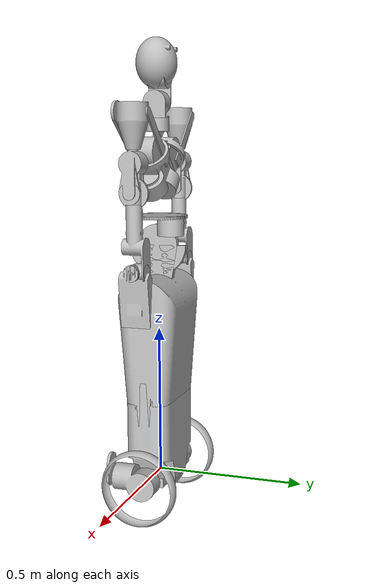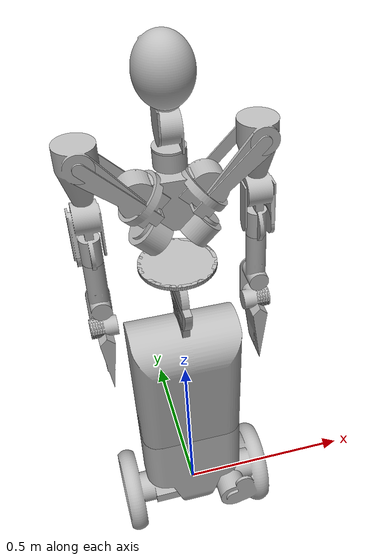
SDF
<?xml version="1.0" ?>
<sdf version="1.6">
	<model name="pre-robody">
		<link name="Torso">
			<self_collide>false</self_collide>
			<pose frame="">-2.2573269931661763e-13 -7.373558974626041e-18 1.0610561705602035 0.0 -0.0 0.0</pose>
			<inertial>
				<pose frame="">0.0 0.0 0.0 0 0 0</pose>
				<mass>8.970094968407071</mass>
				<inertia>
					<ixx>10.129081272648332</ixx>
					<ixy>-3.9277892939082764e-19</ixy>
					<ixz>2.4057895143143707e-12</ixz>
					<iyy>10.138941947590036</iyy>
					<iyz>5.0844922514974945e-17</iyz>
					<izz>0.015187827236129511</izz>
				</inertia>
			</inertial>
			<collision name="Torso_collision">
				<geometry>
					<mesh>
						<uri>model://pre-robody/meshes/CAD/Torso.stl</uri>
						<scale>0.001 0.001 0.001</scale>
					</mesh>
				</geometry>
			</collision>
			<visual name="Torso_visual">
				<geometry>
					<mesh>
						<uri>model://pre-robody/meshes/CAD/Torso.stl</uri>
						<scale>0.001 0.001 0.001</scale>
					</mesh>
				</geometry>
			</visual>
		</link>
		<link name="Shoulder_1_Right">
			<self_collide>false</self_collide>
			<pose frame="">0.08200408206168382 -3.783883224433904e-06 1.0990040820565599 0.0 -0.0 0.0</pose>
			<inertial>
				<pose frame="">0.0 0.0 0.0 0 0 0</pose>
				<mass>0.9004482327815297</mass>
				<inertia>
					<ixx>1.0883647363354698</ixx>
					<ixy>5.324674680686329e-07</ixy>
					<ixz>-0.08115161098796815</ixz>
					<iyy>1.0947081518019737</iyy>
					<iyz>3.997580677009343e-06</iyz>
					<izz>0.006849598056846516</izz>
				</inertia>
			</inertial>
			<collision name="Shoulder_1_Right_collision">
				<geometry>
					<mesh>
						<uri>model://pre-robody/meshes/CAD/Shoulder_1_Right.stl</uri>
						<scale>0.001 0.001 0.001</scale>
					</mesh>
				</geometry>
			</collision>
			<visual name="Shoulder_1_Right_visual">
				<geometry>
					<mesh>
						<uri>model://pre-robody/meshes/CAD/Shoulder_1_Right.stl</uri>
						<scale>0.001 0.001 0.001</scale>
					</mesh>
				</geometry>
			</visual>
		</link>
		<link name="Shoulder_2_Right">
			<self_collide>false</self_collide>
			<pose frame="">0.2049999999948746 -2.470048853215355e-06 1.2219859414214114 0.0 -0.0 0.0</pose>
			<inertial>
				<pose frame="">0.0 0.0 0.0 0 0 0</pose>
				<mass>0.9002392747332185</mass>
				<inertia>
					<ixx>1.3450757052257027</ixx>
					<ixy>4.5584517258437846e-07</ixy>
					<ixz>-0.22551634621043887</ixz>
					<iyy>1.382908154367689</iyy>
					<iyz>2.717281955554151e-06</iyz>
					<izz>0.03891336638943579</izz>
				</inertia>
			</inertial>
			<collision name="Shoulder_2_Right_collision">
				<geometry>
					<mesh>
						<uri>model://pre-robody/meshes/CAD/Shoulder_2_Right.stl</uri>
						<scale>0.001 0.001 0.001</scale>
					</mesh>
				</geometry>
			</collision>
			<visual name="Shoulder_2_Right_visual">
				<geometry>
					<mesh>
						<uri>model://pre-robody/meshes/CAD/Shoulder_2_Right.stl</uri>
						<scale>0.001 0.001 0.001</scale>
					</mesh>
				</geometry>
			</visual>
		</link>
		<link name="ElbowSegment_Right">
			<self_collide>false</self_collide>
			<pose frame="">0.20500450157987132 2.717612187223314e-12 0.9724009508312618 0.0 -0.0 0.0</pose>
			<inertial>
				<pose frame="">0.0 0.0 0.0 0 0 0</pose>
				<mass>0.3000738273336225</mass>
				<inertia>
					<ixx>0.2839146411405186</ixx>
					<ixy>-1.6717014372883148e-13</ixy>
					<ixz>-0.059818688902899146</ixz>
					<iyy>0.2965257867468056</iyy>
					<iyz>-7.938319008747499e-13</iyz>
					<izz>0.012712653951093063</izz>
				</inertia>
			</inertial>
			<collision name="ElbowSegment_Right_collision">
				<geometry>
					<mesh>
						<uri>model://pre-robody/meshes/CAD/ElbowSegment_Right.stl</uri>
						<scale>0.001 0.001 0.001</scale>
					</mesh>
				</geometry>
			</collision>
			<visual name="ElbowSegment_Right_visual">
				<geometry>
					<mesh>
						<uri>model://pre-robody/meshes/CAD/ElbowSegment_Right.stl</uri>
						<scale>0.001 0.001 0.001</scale>
					</mesh>
				</geometry>
			</visual>
		</link>
		<link name="Wrist_Right">
			<self_collide>false</self_collide>
			<pose frame="">0.205000000000019 6.913127882814822e-06 0.7228000000054356 0.0 -0.0 0.0</pose>
			<inertial>
				<pose frame="">0.0 0.0 0.0 0 0 0</pose>
				<mass>0.30009606885046797</mass>
				<inertia>
					<ixx>0.15688361309042698</ixx>
					<ixy>-4.2529351271320555e-07</ixy>
					<ixz>-0.044466434906187735</ixz>
					<iyy>0.16956937252836696</iyy>
					<iyz>-1.4995226877910244e-06</iyz>
					<izz>0.01278726877271213</izz>
				</inertia>
			</inertial>
			<collision name="Wrist_Right_collision">
				<geometry>
					<mesh>
						<uri>model://pre-robody/meshes/CAD/Wrist_Right.stl</uri>
						<scale>0.001 0.001 0.001</scale>
					</mesh>
				</geometry>
			</collision>
			<visual name="Wrist_Right_visual">
				<geometry>
					<mesh>
						<uri>model://pre-robody/meshes/CAD/Wrist_Right.stl</uri>
						<scale>0.001 0.001 0.001</scale>
					</mesh>
				</geometry>
			</visual>
		</link>
		<link name="EndEffector_Right">
			<self_collide>false</self_collide>
			<pose frame="">0.20500149347460866 0.0 0.6328171587774016 0.0 -0.0 0.0</pose>
			<inertial>
				<pose frame="">0.0 0.0 0.0 0 0 0</pose>
				<mass>1.0005084735894825</mass>
				<inertia>
					<ixx>0.40170482223213305</ixx>
					<ixy>-2.752130152580535e-20</ixy>
					<ixz>-0.12979456227373998</ixz>
					<iyy>0.44357649539364324</iyy>
					<iyz>1.707033291190246e-21</iyz>
					<izz>0.04228908651285314</izz>
				</inertia>
			</inertial>
			<collision name="EndEffector_Right_collision">
				<geometry>
					<mesh>
						<uri>model://pre-robody/meshes/CAD/EndEffector_Right.stl</uri>
						<scale>0.001 0.001 0.001</scale>
					</mesh>
				</geometry>
			</collision>
			<visual name="EndEffector_Right_visual">
				<geometry>
					<mesh>
						<uri>model://pre-robody/meshes/CAD/EndEffector_Right.stl</uri>
						<scale>0.001 0.001 0.001</scale>
					</mesh>
				</geometry>
			</visual>
		</link>
		<link name="UpperArm_Right">
			<self_collide>false</self_collide>
			<pose frame="">0.2050012998505205 9.111600451728522e-18 1.0541578896430777 0.0 -0.0 0.0</pose>
			<inertial>
				<pose frame="">0.0 0.0 0.0 0 0 0</pose>
				<mass>1.100185489481107</mass>
				<inertia>
					<ixx>1.2233577434051586</ixx>
					<ixy>-2.533797290843379e-19</ixy>
					<ixz>-0.23775416672999847</ixz>
					<iyy>1.2694696278826019</iyy>
					<iyz>-3.4316810476747225e-19</iyz>
					<izz>0.046753465634248176</izz>
				</inertia>
			</inertial>
			<collision name="UpperArm_Right_collision">
				<geometry>
					<mesh>
						<uri>model://pre-robody/meshes/CAD/UpperArm_Right.stl</uri>
						<scale>0.001 0.001 0.001</scale>
					</mesh>
				</geometry>
			</collision>
			<visual name="UpperArm_Right_visual">
				<geometry>
					<mesh>
						<uri>model://pre-robody/meshes/CAD/UpperArm_Right.stl</uri>
						<scale>0.001 0.001 0.001</scale>
					</mesh>
				</geometry>
			</visual>
		</link>
		<link name="LowerArm_Right">
			<self_collide>false</self_collide>
			<pose frame="">0.20500000000206026 3.3213008140799964e-06 0.8140447593373845 0.0 -0.0 0.0</pose>
			<inertial>
				<pose frame="">0.0 0.0 0.0 0 0 0</pose>
				<mass>0.4003705013642328</mass>
				<inertia>
					<ixx>0.2656626968642574</ixx>
					<ixy>-2.725989287861553e-07</ixy>
					<ixz>-0.06681349922857352</ixz>
					<iyy>0.2823964679388355</iyy>
					<iyz>-1.0336258071510531e-06</iyz>
					<izz>0.01702557305708129</izz>
				</inertia>
			</inertial>
			<collision name="LowerArm_Right_collision">
				<geometry>
					<mesh>
						<uri>model://pre-robody/meshes/CAD/LowerArm_Right.stl</uri>
						<scale>0.001 0.001 0.001</scale>
					</mesh>
				</geometry>
			</collision>
			<visual name="LowerArm_Right_visual">
				<geometry>
					<mesh>
						<uri>model://pre-robody/meshes/CAD/LowerArm_Right.stl</uri>
						<scale>0.001 0.001 0.001</scale>
					</mesh>
				</geometry>
			</visual>
		</link>
		<link name="Spine">
			<self_collide>false</self_collide>
			<pose frame="">7.092983703254019e-20 0.044972436711193886 0.8557258235211882 0.0 -0.0 0.0</pose>
			<inertial>
				<pose frame="">0.0 0.0 0.0 0 0 0</pose>
				<mass>1.230955758859922</mass>
				<inertia>
					<ixx>0.9049897617747702</ixx>
					<ixy>-1.5360494323516385e-18</ixy>
					<ixz>-1.659758917771337e-19</ixz>
					<iyy>0.9024976734257476</iyy>
					<iyz>-0.047373532675433865</iyz>
					<izz>0.003739577816740012</izz>
				</inertia>
			</inertial>
			<collision name="Spine_collision">
				<geometry>
					<mesh>
						<uri>model://pre-robody/meshes/CAD/Spine.stl</uri>
						<scale>0.001 0.001 0.001</scale>
					</mesh>
				</geometry>
			</collision>
			<visual name="Spine_visual">
				<geometry>
					<mesh>
						<uri>model://pre-robody/meshes/CAD/Spine.stl</uri>
						<scale>0.001 0.001 0.001</scale>
					</mesh>
				</geometry>
			</visual>
		</link>
		<link name="Hip">
			<self_collide>false</self_collide>
			<pose frame="">-3.649802365838501e-19 7.348022717878027e-18 0.7227448360827573 0.0 -0.0 0.0</pose>
			<inertial>
				<pose frame="">0.0 0.0 0.0 0 0 0</pose>
				<mass>0.0007426444392122731</mass>
				<inertia>
					<ixx>0.0003933992069260796</ixx>
					<ixy>2.7284841053187847e-23</ixy>
					<ixz>3.4694469519536144e-22</ixz>
					<iyy>0.00039264545542505325</iyy>
					<iyz>-2.1977657675020456e-21</iyz>
					<izz>8.032611303071327e-07</izz>
				</inertia>
			</inertial>
			<collision name="Hip_collision">
				<geometry>
					<mesh>
						<uri>model://pre-robody/meshes/CAD/Hip.stl</uri>
						<scale>0.001 0.001 0.001</scale>
					</mesh>
				</geometry>
			</collision>
			<visual name="Hip_visual">
				<geometry>
					<mesh>
						<uri>model://pre-robody/meshes/CAD/Hip.stl</uri>
						<scale>0.001 0.001 0.001</scale>
					</mesh>
				</geometry>
			</visual>
		</link>
		<link name="UpperLeg">
			<self_collide>false</self_collide>
			<pose frame="">-1.5193088194136305e-16 -2.575159913460178e-10 0.4300578982444661 0.0 -0.0 0.0</pose>
			<inertial>
				<pose frame="">0.0 0.0 0.0 0 0 0</pose>
				<mass>13.258820904655748</mass>
				<inertia>
					<ixx>2.562174249380149</ixx>
					<ixy>-3.0694541942608955e-18</ixy>
					<ixz>8.65052356783935e-16</ixz>
					<iyy>2.5687535492066105</iyy>
					<iyz>1.13990351066504e-09</iyz>
					<izz>0.013691062518343006</izz>
				</inertia>
			</inertial>
			<collision name="UpperLeg_collision">
				<geometry>
					<mesh>
						<uri>model://pre-robody/meshes/CAD/UpperLeg.stl</uri>
						<scale>0.001 0.001 0.001</scale>
					</mesh>
				</geometry>
			</collision>
			<visual name="UpperLeg_visual">
				<geometry>
					<mesh>
						<uri>model://pre-robody/meshes/CAD/UpperLeg.stl</uri>
						<scale>0.001 0.001 0.001</scale>
					</mesh>
				</geometry>
			</visual>
		</link>
		<link name="WheelBase">
			<self_collide>false</self_collide>
			<pose frame="">0.04464405237284462 -0.03378836273972026 9.266623657679002e-07 0.0 -0.0 0.0</pose>
			<inertial>
				<pose frame="">0.0 0.0 0.0 0 0 0</pose>
				<mass>3.0315319231928965</mass>
				<inertia>
					<ixx>0.011794320984290022</ixx>
					<ixy>0.011267737897951604</ixy>
					<ixz>-4.062084224902013e-07</ixz>
					<iyy>0.06438416876177741</iyy>
					<iyz>3.4412893143095156e-07</iyz>
					<izz>0.07277145438078707</izz>
				</inertia>
			</inertial>
			<collision name="WheelBase_collision">
				<geometry>
					<mesh>
						<uri>model://pre-robody/meshes/CAD/WheelBase.stl</uri>
						<scale>0.001 0.001 0.001</scale>
					</mesh>
				</geometry>
			</collision>
			<visual name="WheelBase_visual">
				<geometry>
					<mesh>
						<uri>model://pre-robody/meshes/CAD/WheelBase.stl</uri>
						<scale>0.001 0.001 0.001</scale>
					</mesh>
				</geometry>
			</visual>
		</link>
		<link name="LowerLeg">
			<self_collide>false</self_collide>
			<pose frame="">-1.0171354509022437e-11 -5.9271631913713016e-08 0.13503048076080584 0.0 -0.0 0.0</pose>
			<inertial>
				<pose frame="">0.0 0.0 0.0 0 0 0</pose>
				<mass>19.75573876968384</mass>
				<inertia>
					<ixx>0.4409565635513829</ixx>
					<ixy>1.118528697073841e-12</ixy>
					<ixz>7.907382534958906e-12</ixz>
					<iyy>0.44102522644730746</iyy>
					<iyz>3.98523973740306e-10</iyz>
					<izz>0.033021809084681546</izz>
				</inertia>
			</inertial>
			<collision name="LowerLeg_collision">
				<geometry>
					<mesh>
						<uri>model://pre-robody/meshes/CAD/LowerLeg.stl</uri>
						<scale>0.001 0.001 0.001</scale>
					</mesh>
				</geometry>
			</collision>
			<visual name="LowerLeg_visual">
				<geometry>
					<mesh>
						<uri>model://pre-robody/meshes/CAD/LowerLeg.stl</uri>
						<scale>0.001 0.001 0.001</scale>
					</mesh>
				</geometry>
			</visual>
		</link>
		<link name="NeckSegment_1">
			<self_collide>false</self_collide>
			<pose frame="">1.8350546337795101e-06 5.211321215813567e-18 1.2598808939570956 0.0 -0.0 0.0</pose>
			<inertial>
				<pose frame="">0.0 0.0 0.0 0 0 0</pose>
				<mass>0.4899729395837812</mass>
				<inertia>
					<ixx>0.778116285321031</ixx>
					<ixy>1.5319969749931367e-19</ixy>
					<ixz>-1.1266648286142357e-06</ixz>
					<iyy>0.7780060407998559</iyy>
					<iyz>-3.318694466042247e-18</iyz>
					<izz>0.00027200191835143083</izz>
				</inertia>
			</inertial>
			<collision name="NeckSegment_1_collision">
				<geometry>
					<mesh>
						<uri>model://pre-robody/meshes/CAD/NeckSegment_1.stl</uri>
						<scale>0.001 0.001 0.001</scale>
					</mesh>
				</geometry>
			</collision>
			<visual name="NeckSegment_1_visual">
				<geometry>
					<mesh>
						<uri>model://pre-robody/meshes/CAD/NeckSegment_1.stl</uri>
						<scale>0.001 0.001 0.001</scale>
					</mesh>
				</geometry>
			</visual>
		</link>
		<link name="NeckSegment_2">
			<self_collide>false</self_collide>
			<pose frame="">-2.019589517373494e-06 6.3926687375714756e-06 1.3438782414685755 0.0 -0.0 0.0</pose>
			<inertial>
				<pose frame="">0.0 0.0 0.0 0 0 0</pose>
				<mass>0.49004862549611355</mass>
				<inertia>
					<ixx>0.8853044316450557</ixx>
					<ixy>-1.2599095258347055e-17</ixy>
					<ixz>1.257498702360325e-06</ixz>
					<iyy>0.8854146272599565</iyy>
					<iyz>-4.210010996461845e-06</iyz>
					<izz>0.00027212161944695814</izz>
				</inertia>
			</inertial>
			<collision name="NeckSegment_2_collision">
				<geometry>
					<mesh>
						<uri>model://pre-robody/meshes/CAD/NeckSegment_2.stl</uri>
						<scale>0.001 0.001 0.001</scale>
					</mesh>
				</geometry>
			</collision>
			<visual name="NeckSegment_2_visual">
				<geometry>
					<mesh>
						<uri>model://pre-robody/meshes/CAD/NeckSegment_2.stl</uri>
						<scale>0.001 0.001 0.001</scale>
					</mesh>
				</geometry>
			</visual>
		</link>
		<link name="Head">
			<self_collide>false</self_collide>
			<pose frame="">-5.8934531480529714e-09 2.3174030908719595e-07 1.3700393602620842 0.0 -0.0 0.0</pose>
			<inertial>
				<pose frame="">0.0 0.0 0.0 0 0 0</pose>
				<mass>1.0216809032657195</mass>
				<inertia>
					<ixx>1.9188046562991201</ixx>
					<ixy>-4.906284564637788e-11</ixy>
					<ixz>8.49855576312334e-09</ixz>
					<iyy>1.9186260882362356</iyy>
					<iyz>-3.3874153193446773e-07</iyz>
					<izz>0.00024997389954786107</izz>
				</inertia>
			</inertial>
			<collision name="Head_collision">
				<geometry>
					<mesh>
						<uri>model://pre-robody/meshes/CAD/Head.stl</uri>
						<scale>0.001 0.001 0.001</scale>
					</mesh>
				</geometry>
			</collision>
			<visual name="Head_visual">
				<geometry>
					<mesh>
						<uri>model://pre-robody/meshes/CAD/Head.stl</uri>
						<scale>0.001 0.001 0.001</scale>
					</mesh>
				</geometry>
			</visual>
		</link>
		<link name="Shoulder_1_Left">
			<self_collide>false</self_collide>
			<pose frame="">-0.08200408206168383 -3.7838832244338965e-06 1.0990040820565599 0.0 -0.0 0.0</pose>
			<inertial>
				<pose frame="">0.0 0.0 0.0 0 0 0</pose>
				<mass>0.9004482327815297</mass>
				<inertia>
					<ixx>1.0883647363354698</ixx>
					<ixy>-5.324674680682587e-07</ixy>
					<ixz>0.08115161098796815</ixz>
					<iyy>1.0947081518019737</iyy>
					<iyz>3.997580677108665e-06</iyz>
					<izz>0.006849598056846515</izz>
				</inertia>
			</inertial>
			<collision name="Shoulder_1_Left_collision">
				<geometry>
					<mesh>
						<uri>model://pre-robody/meshes/CAD/Shoulder_1_Left.stl</uri>
						<scale>0.001 0.001 0.001</scale>
					</mesh>
				</geometry>
			</collision>
			<visual name="Shoulder_1_Left_visual">
				<geometry>
					<mesh>
						<uri>model://pre-robody/meshes/CAD/Shoulder_1_Left.stl</uri>
						<scale>0.001 0.001 0.001</scale>
					</mesh>
				</geometry>
			</visual>
		</link>
		<link name="Shoulder_2_Left">
			<self_collide>false</self_collide>
			<pose frame="">-0.2049999999948746 -2.470048853215355e-06 1.2219859414214114 0.0 -0.0 0.0</pose>
			<inertial>
				<pose frame="">0.0 0.0 0.0 0 0 0</pose>
				<mass>0.9002392747332185</mass>
				<inertia>
					<ixx>1.3450757052257027</ixx>
					<ixy>-4.558451725843775e-07</ixy>
					<ixz>0.22551634621043887</ixz>
					<iyy>1.382908154367689</iyy>
					<iyz>2.717281955554151e-06</iyz>
					<izz>0.03891336638943579</izz>
				</inertia>
			</inertial>
			<collision name="Shoulder_2_Left_collision">
				<geometry>
					<mesh>
						<uri>model://pre-robody/meshes/CAD/Shoulder_2_Left.stl</uri>
						<scale>0.001 0.001 0.001</scale>
					</mesh>
				</geometry>
			</collision>
			<visual name="Shoulder_2_Left_visual">
				<geometry>
					<mesh>
						<uri>model://pre-robody/meshes/CAD/Shoulder_2_Left.stl</uri>
						<scale>0.001 0.001 0.001</scale>
					</mesh>
				</geometry>
			</visual>
		</link>
		<link name="ElbowSegment_Left">
			<self_collide>false</self_collide>
			<pose frame="">-0.20500450157987132 2.717612187223314e-12 0.9724009508312618 0.0 -0.0 0.0</pose>
			<inertial>
				<pose frame="">0.0 0.0 0.0 0 0 0</pose>
				<mass>0.3000738273336225</mass>
				<inertia>
					<ixx>0.2839146411405186</ixx>
					<ixy>1.6717007559517276e-13</ixy>
					<ixz>0.059818688902899146</ixz>
					<iyy>0.2965257867468056</iyy>
					<iyz>-7.938319008747499e-13</iyz>
					<izz>0.012712653951093063</izz>
				</inertia>
			</inertial>
			<collision name="ElbowSegment_Left_collision">
				<geometry>
					<mesh>
						<uri>model://pre-robody/meshes/CAD/ElbowSegment_Left.stl</uri>
						<scale>0.001 0.001 0.001</scale>
					</mesh>
				</geometry>
			</collision>
			<visual name="ElbowSegment_Left_visual">
				<geometry>
					<mesh>
						<uri>model://pre-robody/meshes/CAD/ElbowSegment_Left.stl</uri>
						<scale>0.001 0.001 0.001</scale>
					</mesh>
				</geometry>
			</visual>
		</link>
		<link name="Wrist_Left">
			<self_collide>false</self_collide>
			<pose frame="">-0.205000000000019 6.913127882814822e-06 0.7228000000054356 0.0 -0.0 0.0</pose>
			<inertial>
				<pose frame="">0.0 0.0 0.0 0 0 0</pose>
				<mass>0.30009606885046797</mass>
				<inertia>
					<ixx>0.15688361309042698</ixx>
					<ixy>4.252935127131147e-07</ixy>
					<ixz>0.044466434906187735</ixz>
					<iyy>0.16956937252836696</iyy>
					<iyz>-1.4995226877910244e-06</iyz>
					<izz>0.01278726877271213</izz>
				</inertia>
			</inertial>
			<collision name="Wrist_Left_collision">
				<geometry>
					<mesh>
						<uri>model://pre-robody/meshes/CAD/Wrist_Left.stl</uri>
						<scale>0.001 0.001 0.001</scale>
					</mesh>
				</geometry>
			</collision>
			<visual name="Wrist_Left_visual">
				<geometry>
					<mesh>
						<uri>model://pre-robody/meshes/CAD/Wrist_Left.stl</uri>
						<scale>0.001 0.001 0.001</scale>
					</mesh>
				</geometry>
			</visual>
		</link>
		<link name="EndEffector_Left">
			<self_collide>false</self_collide>
			<pose frame="">-0.2050014934746087 0.0 0.6328171587774011 0.0 -0.0 0.0</pose>
			<inertial>
				<pose frame="">0.0 0.0 0.0 0 0 0</pose>
				<mass>1.0005084735894811</mass>
				<inertia>
					<ixx>0.40170482223213494</ixx>
					<ixy>2.842170943040401e-20</ixy>
					<ixz>0.12979456227373973</ixz>
					<iyy>0.4435764953936404</iyy>
					<iyz>-2.278102329000831e-19</iyz>
					<izz>0.042289086512857704</izz>
				</inertia>
			</inertial>
			<collision name="EndEffector_Left_collision">
				<geometry>
					<mesh>
						<uri>model://pre-robody/meshes/CAD/EndEffector_Left.stl</uri>
						<scale>0.001 0.001 0.001</scale>
					</mesh>
				</geometry>
			</collision>
			<visual name="EndEffector_Left_visual">
				<geometry>
					<mesh>
						<uri>model://pre-robody/meshes/CAD/EndEffector_Left.stl</uri>
						<scale>0.001 0.001 0.001</scale>
					</mesh>
				</geometry>
			</visual>
		</link>
		<link name="UpperArm_Left">
			<self_collide>false</self_collide>
			<pose frame="">-0.20500129985052049 3.2641221542052277e-18 1.0541578896430774 0.0 -0.0 0.0</pose>
			<inertial>
				<pose frame="">0.0 0.0 0.0 0 0 0</pose>
				<mass>1.1001854894811083</mass>
				<inertia>
					<ixx>1.2233577434053413</ixx>
					<ixy>-1.0651913129692195e-18</ixy>
					<ixz>0.2377541667299987</ixz>
					<iyy>1.2694696278826032</iyy>
					<iyz>5.6218868200507745e-18</iyz>
					<izz>0.04675346563442945</izz>
				</inertia>
			</inertial>
			<collision name="UpperArm_Left_collision">
				<geometry>
					<mesh>
						<uri>model://pre-robody/meshes/CAD/UpperArm_Left.stl</uri>
						<scale>0.001 0.001 0.001</scale>
					</mesh>
				</geometry>
			</collision>
			<visual name="UpperArm_Left_visual">
				<geometry>
					<mesh>
						<uri>model://pre-robody/meshes/CAD/UpperArm_Left.stl</uri>
						<scale>0.001 0.001 0.001</scale>
					</mesh>
				</geometry>
			</visual>
		</link>
		<link name="LowerArm_Left">
			<self_collide>false</self_collide>
			<pose frame="">-0.2050000000020602 3.321300814079997e-06 0.8140447593373847 0.0 -0.0 0.0</pose>
			<inertial>
				<pose frame="">0.0 0.0 0.0 0 0 0</pose>
				<mass>0.40037050136423274</mass>
				<inertia>
					<ixx>0.26566269686434224</ixx>
					<ixy>2.725989287862498e-07</ixy>
					<ixz>0.0668134992285735</ixz>
					<iyy>0.28239646793892026</iyy>
					<iyz>-1.0336258071510987e-06</iyz>
					<izz>0.017025573057081286</izz>
				</inertia>
			</inertial>
			<collision name="LowerArm_Left_collision">
				<geometry>
					<mesh>
						<uri>model://pre-robody/meshes/CAD/LowerArm_Left.stl</uri>
						<scale>0.001 0.001 0.001</scale>
					</mesh>
				</geometry>
			</collision>
			<visual name="LowerArm_Left_visual">
				<geometry>
					<mesh>
						<uri>model://pre-robody/meshes/CAD/LowerArm_Left.stl</uri>
						<scale>0.001 0.001 0.001</scale>
					</mesh>
				</geometry>
			</visual>
		</link>
		<joint name="Ankle_Y" type="revolute">
			<parent>WheelBase</parent>
			<child>LowerLeg</child>
			<pose frame="">1.0171354509022437e-11 5.9271631913713016e-08 -0.13503048076080584 0 0 0</pose>
			<axis>
				<xyz>0.0 1.0 0.0</xyz>
				<limit>
					<lower>-0.17453292519943295</lower>
					<upper>0.17453292519943295</upper>
				</limit>
				<use_parent_model_frame>0</use_parent_model_frame>
			</axis>
		</joint>
		<joint name="Knee_X" type="revolute">
			<parent>LowerLeg</parent>
			<child>UpperLeg</child>
			<pose frame="">0.15000000000000016 2.575159913460178e-10 -0.1600578982444661 0 0 0</pose>
			<axis>
				<xyz>1.0 0.0 0.0</xyz>
				<limit>
					<lower>-0.0</lower>
					<upper>2.0943951023931953</upper>
				</limit>
				<use_parent_model_frame>0</use_parent_model_frame>
			</axis>
		</joint>
		<joint name="Hip_X_Lower" type="revolute">
			<parent>UpperLeg</parent>
			<child>Hip</child>
			<pose frame="">0.01 -7.348022717878027e-18 -0.1327448360827573 0 0 0</pose>
			<axis>
				<xyz>1.0 0.0 0.0</xyz>
				<limit>
					<lower>-1.5707963267948966</lower>
					<upper>0.04363323129985824</upper>
				</limit>
				<use_parent_model_frame>0</use_parent_model_frame>
			</axis>
		</joint>
		<joint name="Hip_X_Upper" type="revolute">
			<parent>Hip</parent>
			<child>Spine</child>
			<pose frame="">0.01 -0.044972436711193886 -0.06572582352118815 0 0 0</pose>
			<axis>
				<xyz>-1.0 0.0 0.0</xyz>
				<limit>
					<lower>-0.0</lower>
					<upper>1.5707963267948966</upper>
				</limit>
				<use_parent_model_frame>0</use_parent_model_frame>
			</axis>
		</joint>
		<joint name="Spine-Torso_Z" type="revolute">
			<parent>Spine</parent>
			<child>Torso</child>
			<pose frame="">2.2573269931661763e-13 1.9603713615611435e-18 -0.17105617056020292 0 0 0</pose>
			<axis>
				<xyz>0.0 -5.684341886080805e-15 1.0</xyz>
				<limit>
					<lower>-1.0471975511965976</lower>
					<upper>1.0471975511965976</upper>
				</limit>
				<use_parent_model_frame>0</use_parent_model_frame>
			</axis>
		</joint>
		<joint name="Neck1_Z" type="revolute">
			<parent>Torso</parent>
			<child>NeckSegment_1</child>
			<pose frame="">-1.8350546335656343e-06 -5.211321215813567e-18 -0.04949667368563141 0 0 0</pose>
			<axis>
				<xyz>3.597684738025824e-14 0.0 1.0</xyz>
				<limit>
					<lower>-1.5707963267948966</lower>
					<upper>1.5707963267948966</upper>
				</limit>
				<use_parent_model_frame>0</use_parent_model_frame>
			</axis>
		</joint>
		<joint name="Neck2_X" type="revolute">
			<parent>NeckSegment_1</parent>
			<child>NeckSegment_2</child>
			<pose frame="">-0.02224798041048779 -6.3926687375714756e-06 -0.08399402119711269 0 0 0</pose>
			<axis>
				<xyz>1.0 0.0 0.0</xyz>
				<limit>
					<lower>-1.0471975511965976</lower>
					<upper>0.7853981633974483</upper>
				</limit>
				<use_parent_model_frame>0</use_parent_model_frame>
			</axis>
		</joint>
		<joint name="Neck3_Y" type="revolute">
			<parent>NeckSegment_2</parent>
			<child>Head</child>
			<pose frame="">5.893447988245155e-09 -0.02225023174030909 -0.026155139990621308 0 0 0</pose>
			<axis>
				<xyz>0.0 -1.0 0.0</xyz>
				<limit>
					<lower>-0.2617993877991494</lower>
					<upper>0.2617993877991494</upper>
				</limit>
				<use_parent_model_frame>0</use_parent_model_frame>
			</axis>
		</joint>
		<joint name="Shoulder2_Right" type="revolute">
			<parent>Shoulder_1_Right</parent>
			<child>Shoulder_2_Right</child>
			<pose frame="">5.124718427396147e-12 -0.05799752995114679 1.4058578588702631e-05 0 0 0</pose>
			<axis>
				<xyz>0.0 1.0 0.0</xyz>
				<limit>
					<lower>-2.0943951023931953</lower>
					<upper>0.0</upper>
				</limit>
				<use_parent_model_frame>0</use_parent_model_frame>
			</axis>
		</joint>
		<joint name="Shoulder1_Right" type="revolute">
			<parent>Torso</parent>
			<child>Shoulder_1_Right</child>
			<pose frame="">-0.044551809276475715 3.783883224433904e-06 -0.04455180927134578 0 0 0</pose>
			<axis>
				<xyz>-0.7071067811865414 0.0 -0.7071067811865538</xyz>
				<limit>
					<lower>-2.6179938779914944</lower>
					<upper>0.7853981633974483</upper>
				</limit>
				<use_parent_model_frame>0</use_parent_model_frame>
			</axis>
		</joint>
		<joint name="Shoulder3_Right" type="revolute">
			<parent>Shoulder_2_Right</parent>
			<child>UpperArm_Right</child>
			<pose frame="">-1.299850521228052e-06 -1.7993384648729777e-17 0.13884211035692245 0 0 0</pose>
			<axis>
				<xyz>0.0 0.0 -1.0</xyz>
				<limit>
					<lower>-1.5707963267948966</lower>
					<upper>1.5707963267948966</upper>
				</limit>
				<use_parent_model_frame>0</use_parent_model_frame>
			</axis>
		</joint>
		<joint name="Elbow1_X_Right" type="revolute">
			<parent>UpperArm_Right</parent>
			<child>ElbowSegment_Right</child>
			<pose frame="">0.03699549842012914 -2.717612187223314e-12 -9.508312618322634e-07 0 0 0</pose>
			<axis>
				<xyz>-1.0 0.0 0.0</xyz>
				<limit>
					<lower>-2.2689280275926285</lower>
					<upper>0.0</upper>
				</limit>
				<use_parent_model_frame>0</use_parent_model_frame>
			</axis>
		</joint>
		<joint name="Elbow2_Z_Right" type="revolute">
			<parent>ElbowSegment_Right</parent>
			<child>LowerArm_Right</child>
			<pose frame="">-2.0609647322089586e-12 -3.3213008140799964e-06 0.12300524066261545 0 0 0</pose>
			<axis>
				<xyz>0.0 0.0 1.0</xyz>
				<limit>
					<lower>-1.5707963267948966</lower>
					<upper>1.5707963267948966</upper>
				</limit>
				<use_parent_model_frame>0</use_parent_model_frame>
			</axis>
		</joint>
		<joint name="Wrist1_Y_Right" type="revolute">
			<parent>LowerArm_Right</parent>
			<child>Wrist_Right</child>
			<pose frame="">1.7053025658242404e-15 0.04034308687211719 -5.435794037111918e-12 0 0 0</pose>
			<axis>
				<xyz>0.0 -1.0 0.0</xyz>
				<limit>
					<lower>-0.6981317007977318</lower>
					<upper>0.5235987755982988</upper>
				</limit>
				<use_parent_model_frame>0</use_parent_model_frame>
			</axis>
		</joint>
		<joint name="Wrist2_X_Right" type="revolute">
			<parent>Wrist_Right</parent>
			<child>EndEffector_Right</child>
			<pose frame="">0.035348506525412125 0.0 0.08998284122259825 0 0 0</pose>
			<axis>
				<xyz>-1.0 0.0 0.0</xyz>
				<limit>
					<lower>-0.3490658503988659</lower>
					<upper>0.6981317007977318</upper>
				</limit>
				<use_parent_model_frame>0</use_parent_model_frame>
			</axis>
		</joint>
		<joint name="Shoulder1_Left" type="revolute">
			<parent>Torso</parent>
			<child>Shoulder_1_Left</child>
			<pose frame="">0.044551809276475736 3.7838832244338965e-06 -0.04455180927134578 0 0 0</pose>
			<axis>
				<xyz>-0.7071067811865409 0.0 0.7071067811865542</xyz>
				<limit>
					<lower>-2.6179938779914944</lower>
					<upper>0.7853981633974483</upper>
				</limit>
				<use_parent_model_frame>0</use_parent_model_frame>
			</axis>
		</joint>
		<joint name="Shoulder2_Left" type="revolute">
			<parent>Shoulder_1_Left</parent>
			<child>Shoulder_2_Left</child>
			<pose frame="">-5.124718427396147e-12 -0.05799752995114679 1.4058578589839498e-05 0 0 0</pose>
			<axis>
				<xyz>0.0 -1.0 0.0</xyz>
				<limit>
					<lower>-2.0943951023931953</lower>
					<upper>0.0</upper>
				</limit>
				<use_parent_model_frame>0</use_parent_model_frame>
			</axis>
		</joint>
		<joint name="Shoulder3_Left" type="revolute">
			<parent>Shoulder_2_Left</parent>
			<child>UpperArm_Left</child>
			<pose frame="">1.2998505211569978e-06 -3.2641221542052277e-18 0.1388421103569219 0 0 0</pose>
			<axis>
				<xyz>-1.332267629550212e-14 0.0 1.0</xyz>
				<limit>
					<lower>-1.5707963267948966</lower>
					<upper>1.5707963267948966</upper>
				</limit>
				<use_parent_model_frame>0</use_parent_model_frame>
			</axis>
		</joint>
		<joint name="Elbow1_X_Left" type="revolute">
			<parent>UpperArm_Left</parent>
			<child>ElbowSegment_Left</child>
			<pose frame="">-0.03699549842012914 -2.717612187223314e-12 -9.508312606953951e-07 0 0 0</pose>
			<axis>
				<xyz>-1.0 0.0 0.0</xyz>
				<limit>
					<lower>-2.2689280275926285</lower>
					<upper>0.0</upper>
				</limit>
				<use_parent_model_frame>0</use_parent_model_frame>
			</axis>
		</joint>
		<joint name="Elbow2_Z_Left" type="revolute">
			<parent>ElbowSegment_Left</parent>
			<child>LowerArm_Left</child>
			<pose frame="">2.0608936779353827e-12 -3.321300814079997e-06 0.12300524066261645 0 0 0</pose>
			<axis>
				<xyz>0.0 0.0 -1.0</xyz>
				<limit>
					<lower>-1.5707963267948966</lower>
					<upper>1.5707963267948966</upper>
				</limit>
				<use_parent_model_frame>0</use_parent_model_frame>
			</axis>
		</joint>
		<joint name="Wrist1_Y_Left" type="revolute">
			<parent>LowerArm_Left</parent>
			<child>Wrist_Left</child>
			<pose frame="">-1.7053025658242404e-15 0.04034308687211719 -5.434657168734702e-12 0 0 0</pose>
			<axis>
				<xyz>0.0 1.0 0.0</xyz>
				<limit>
					<lower>-0.6981317007977318</lower>
					<upper>0.5235987755982988</upper>
				</limit>
				<use_parent_model_frame>0</use_parent_model_frame>
			</axis>
		</joint>
		<joint name="Wrist2_X_Left" type="revolute">
			<parent>Wrist_Left</parent>
			<child>EndEffector_Left</child>
			<pose frame="">-0.03534850652541209 0.0 0.08998284122259989 0 0 0</pose>
			<axis>
				<xyz>-1.0 0.0 0.0</xyz>
				<limit>
					<lower>-0.3490658503988659</lower>
					<upper>0.6981317007977318</upper>
				</limit>
				<use_parent_model_frame>0</use_parent_model_frame>
			</axis>
		</joint>
	</model>
</sdf>
